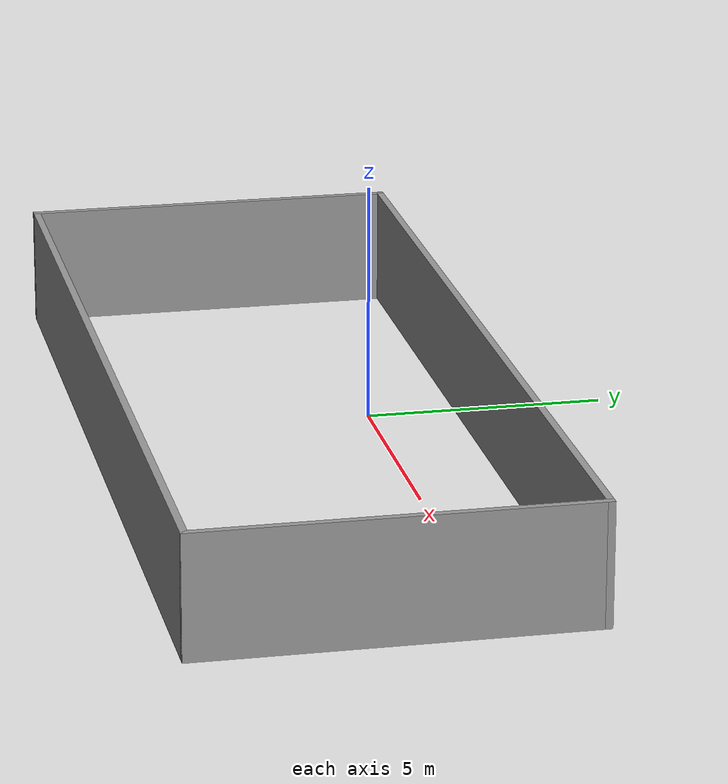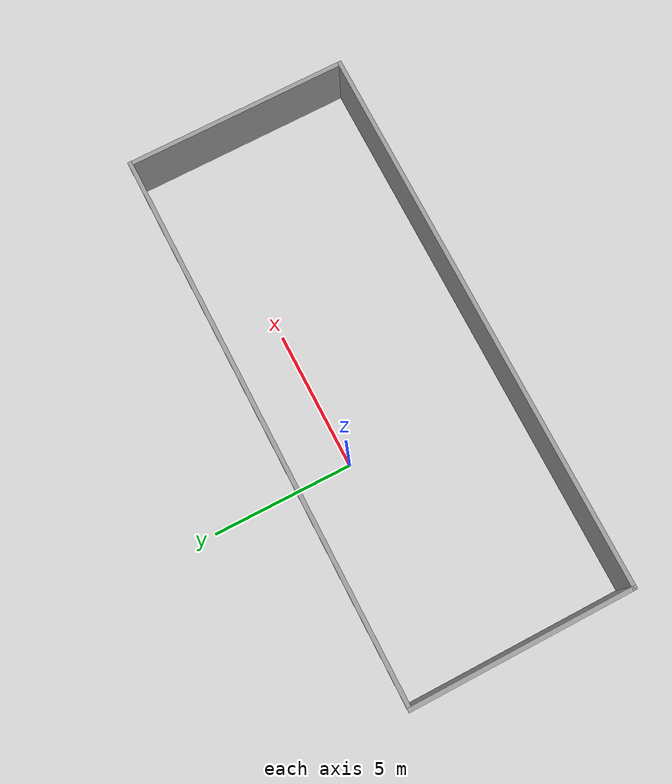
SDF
<?xml version='1.0'?>
<sdf version='1.7'>
  <model name='hallway2'>
    <pose>2.11808 -1.99578 0 0 -0 0</pose>
    <link name='Wall_1'>
      <collision name='Wall_1_Collision'>
        <geometry>
          <box>
            <size>20 0.15 2.5</size>
          </box>
        </geometry>
        <pose>0 0 1.25 0 -0 0</pose>
      </collision>
      <visual name='Wall_1_Visual'>
        <pose>0 0 1.25 0 -0 0</pose>
        <geometry>
          <box>
            <size>20 0.15 2.5</size>
          </box>
        </geometry>
        <material>
          <script>
            <uri>file://media/materials/scripts/gazebo.material</uri>
            <name>Gazebo/Grey</name>
          </script>
          <ambient>1 1 1 1</ambient>
        </material>
        <meta>
          <layer>0</layer>
        </meta>
      </visual>
      <pose>-0 -3.925 0 0 -0 0</pose>
    </link>
    <link name='Wall_2'>
      <collision name='Wall_2_Collision'>
        <geometry>
          <box>
            <size>8 0.15 2.5</size>
          </box>
        </geometry>
        <pose>0 0 1.25 0 -0 0</pose>
      </collision>
      <visual name='Wall_2_Visual'>
        <pose>0 0 1.25 0 -0 0</pose>
        <geometry>
          <box>
            <size>8 0.15 2.5</size>
          </box>
        </geometry>
        <material>
          <script>
            <uri>file://media/materials/scripts/gazebo.material</uri>
            <name>Gazebo/Grey</name>
          </script>
          <ambient>1 1 1 1</ambient>
        </material>
        <meta>
          <layer>0</layer>
        </meta>
      </visual>
      <pose>9.925 -0 0 0 -0 1.5708</pose>
    </link>
    <link name='Wall_3'>
      <collision name='Wall_3_Collision'>
        <geometry>
          <box>
            <size>20 0.15 2.5</size>
          </box>
        </geometry>
        <pose>0 0 1.25 0 -0 0</pose>
      </collision>
      <visual name='Wall_3_Visual'>
        <pose>0 0 1.25 0 -0 0</pose>
        <geometry>
          <box>
            <size>20 0.15 2.5</size>
          </box>
        </geometry>
        <material>
          <script>
            <uri>file://media/materials/scripts/gazebo.material</uri>
            <name>Gazebo/Grey</name>
          </script>
          <ambient>1 1 1 1</ambient>
        </material>
        <meta>
          <layer>0</layer>
        </meta>
      </visual>
      <pose>-0 3.925 0 0 -0 3.14159</pose>
    </link>
    <link name='Wall_4'>
      <collision name='Wall_4_Collision'>
        <geometry>
          <box>
            <size>8 0.15 2.5</size>
          </box>
        </geometry>
        <pose>0 0 1.25 0 -0 0</pose>
      </collision>
      <visual name='Wall_4_Visual'>
        <pose>0 0 1.25 0 -0 0</pose>
        <geometry>
          <box>
            <size>8 0.15 2.5</size>
          </box>
        </geometry>
        <material>
          <script>
            <uri>file://media/materials/scripts/gazebo.material</uri>
            <name>Gazebo/Grey</name>
          </script>
          <ambient>1 1 1 1</ambient>
        </material>
        <meta>
          <layer>0</layer>
        </meta>
      </visual>
      <pose>-9.925 -0 0 0 -0 -1.5708</pose>
    </link>
    <static>1</static>
  </model>
</sdf>
